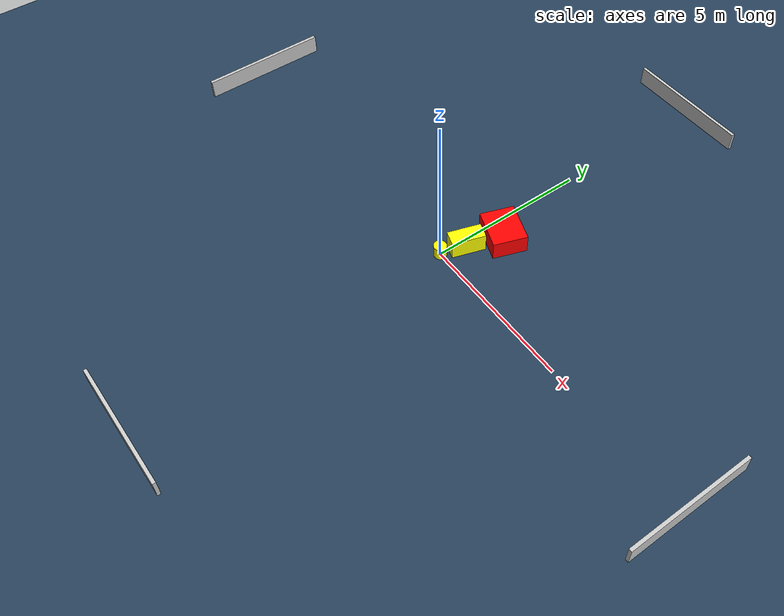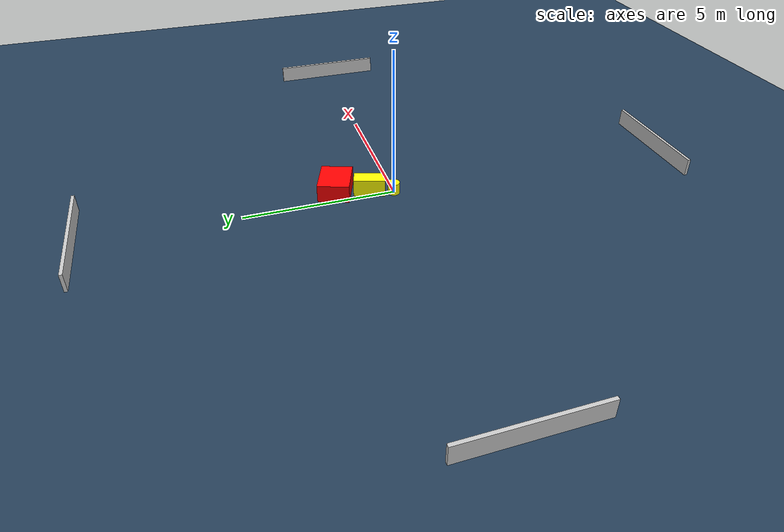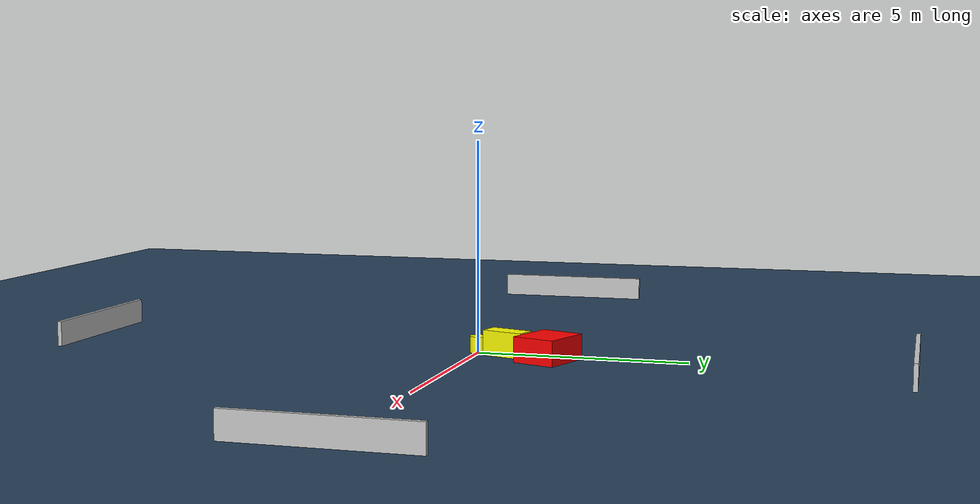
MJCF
<?xml version="1.0" ?>
<mujoco model="generated_environment">
  <option timestep="0.01" integrator="RK4" cone="elliptic"/>
  <default>
    <geom density="1"/>
  </default>
  <asset>
    <texture builtin="gradient" height="3072" name="skybox" rgb1="0.3 0.5 0.7" rgb2="0 0 0" type="skybox" width="512"/>
    <texture builtin="checker" height="300" name="groundplane" rgb1="0.2 0.3 0.4" rgb2="0.1 0.2 0.3" type="2d" width="300"/>
    <material name="groundplane" reflectance="0.2" texrepeat="5 5" texture="groundplane"/>
  </asset>
  <worldbody>
    <light dir="0 0 -1" directional="true" pos="0 0 1.5"/>
    <geom condim="3" friction="0.5 0.005 0.001" material="groundplane" name="floor" pos="0 0 0" size="0 0 0.05" type="plane"/>
    <body name="walls">
      <geom name="wall_1" condim="4" pos="-10.0 0.0 0.3" rgba="0.800000011920929 0.800000011920929 0.800000011920929 1.0" size="0.05 2.0 0.3" type="box"/>
      <geom name="wall_2" condim="4" pos="10.0 0.0 0.3" rgba="0.800000011920929 0.800000011920929 0.800000011920929 1.0" size="0.05 2.0 0.3" type="box"/>
      <geom name="wall_3" condim="4" pos="0.0 -10.0 0.3" rgba="0.800000011920929 0.800000011920929 0.800000011920929 1.0" size="2.0 0.05 0.3" type="box"/>
      <geom name="wall_4" condim="4" pos="0.0 10.0 0.3" rgba="0.800000011920929 0.800000011920929 0.800000011920929 1.0" size="2.0 0.05 0.3" type="box"/>
    </body>
    <body name="robot">
      <joint name="joint_x" type="slide" pos="0 0 0" axis="1 0 0"/>
      <joint name="joint_y" type="slide" pos="0 0 0" axis="0 1 0"/>
      <geom name="robot" type="cylinder" pos="0.0 0.0 0.2" size="0.2 0.2 0.0" mass="5.0" friction="1.0 0.005 0.0001" condim="4" rgba="1.0 1.0 0.0 1.0"/>
    </body>
    <body name="obstacle_1_movable">
      <geom name="obstacle_1_movable" condim="4" pos="0.24333179659912302 0.7660860054904721 0.3" euler="0 0 341.99171962966903" friction="0.0 0.005 0.001" rgba="1.0 1.0 0.0 1.0" size="0.24211111265406232 0.5194665387717657 0.3" type="box" mass="0.1"/>
      <joint type="free"/>
    </body>
    <body name="obstacle_2_static">
      <geom name="obstacle_2_static" condim="4" pos="0.6225963329240883 1.8378877528922943 0.3" euler="0 0 160.36568800754705" friction="0.0 0.005 0.001" rgba="1.0 0.0 0.0 1.0" size="0.6277623773124379 0.5264049492912297 0.3" type="box"/>
    </body>
  </worldbody>
  <actuator>
    <motor name="actuator_x" joint="joint_x" gear="1" ctrlrange="-1 1"/>
    <motor name="actuator_y" joint="joint_y" gear="1" ctrlrange="-1 1"/>
  </actuator>
</mujoco>
